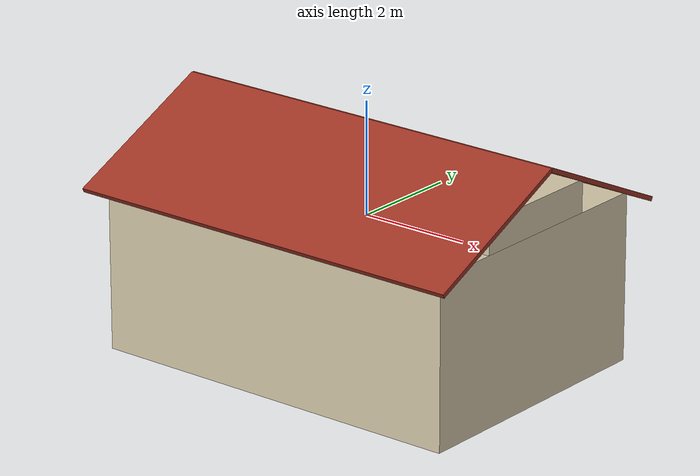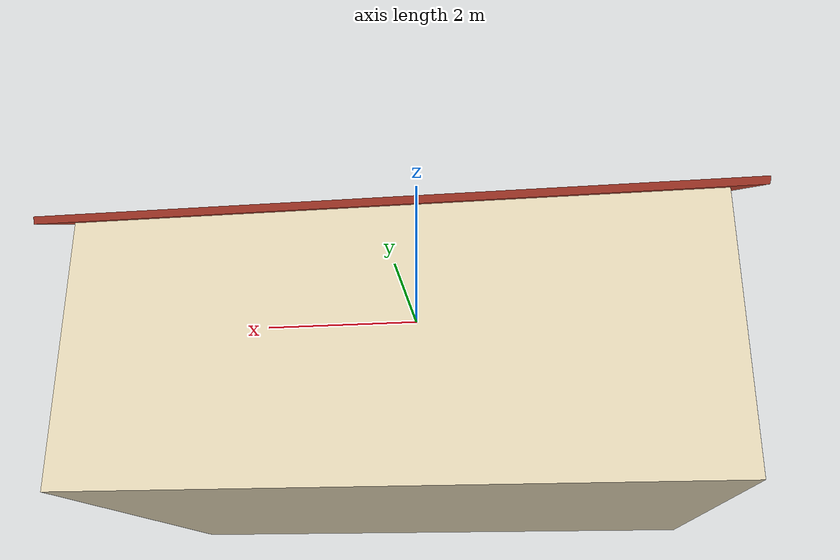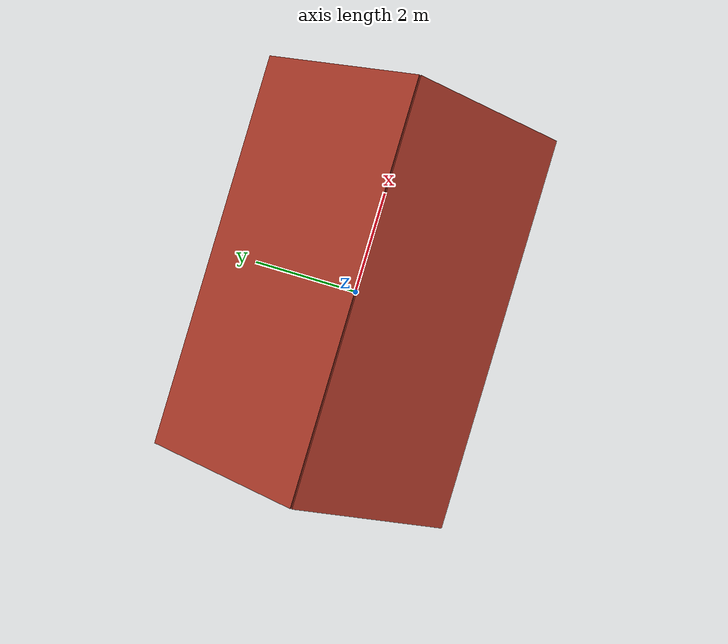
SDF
<?xml version="1.0" ?>
<sdf version="1.9">
  <model name="flooded_house">
    <static>true</static>
    <link name="house">
      <visual name="walls">
        <pose>0 0 -1.000 0 0 0</pose>
        <geometry><box><size>7.0 5.0 3.0</size></box></geometry>
        <material><ambient>0.85 0.8 0.68 1</ambient><diffuse>0.85 0.8 0.68 1</diffuse><specular>0.1 0.1 0.1 1</specular></material>
      </visual>
      <visual name="gable">
        <pose>0 0 0.791 0 0 0</pose>
        <geometry><box><size>7.0 2.5 0.583</size></box></geometry>
        <material><ambient>0.85 0.8 0.68 1</ambient><diffuse>0.85 0.8 0.68 1</diffuse><specular>0.1 0.1 0.1 1</specular></material>
      </visual>
      <visual name="roof_north">
        <pose>0 1.400 1.013 -0.4363 0 0</pose>
        <geometry><box><size>7.6 3.089 0.08</size></box></geometry>
        <material><ambient>0.62 0.2 0.14 1</ambient><diffuse>0.62 0.2 0.14 1</diffuse><specular>0.1 0.1 0.1 1</specular></material>
      </visual>
      <visual name="roof_south">
        <pose>0 -1.400 1.013 0.4363 0 0</pose>
        <geometry><box><size>7.6 3.089 0.08</size></box></geometry>
        <material><ambient>0.62 0.2 0.14 1</ambient><diffuse>0.62 0.2 0.14 1</diffuse><specular>0.1 0.1 0.1 1</specular></material>
      </visual>
      <collision name="walls">
        <pose>0 0 -1.000 0 0 0</pose>
        <geometry><box><size>7.0 5.0 3.0</size></box></geometry>
      </collision>
    </link>
  </model>
</sdf>
